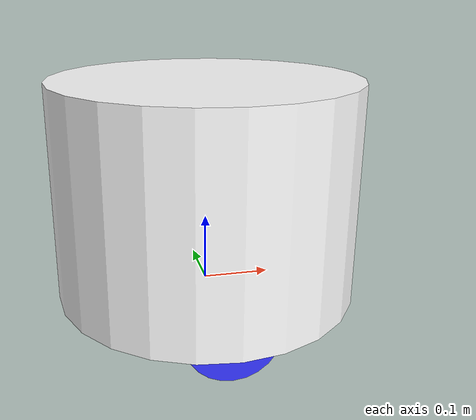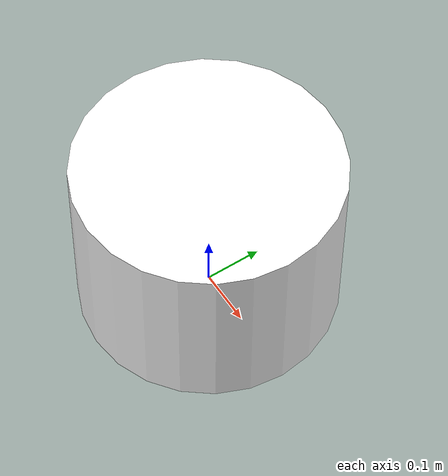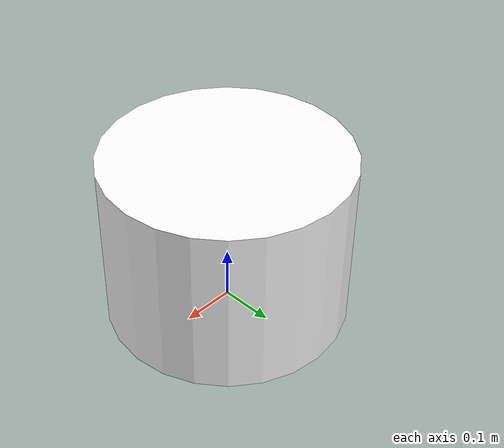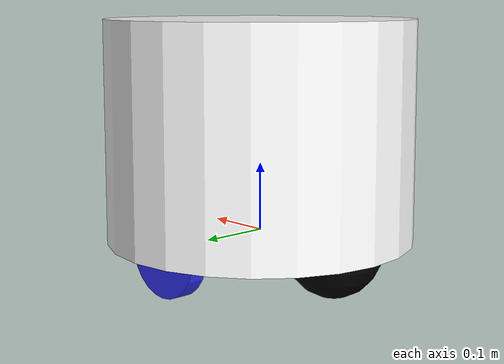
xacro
<?xml version="1.0"?>
<robot xmlns:xacro="http://www.ros.org/wiki/xacro">

<xacro:include filename="inertial_macros.xacro" />

<material name="white">
    <color rgba="1 1 1 1"/>
</material>

<material name="orange">
    <color rgba="1 0.3 0.1 1"/>
</material>

<material name="blue">
    <color rgba="0.2 0.2 1 1"/>
</material>

<material name="black">
    <color rgba="0 0 0 1"/>
</material>
<material name="red">
    <color rgba="1 0 0 1"/>
</material>

<link name="base_link">
</link>

<joint name="base_footprint_joint" type="fixed">
    <parent link="base_link"/>
    <child link="base_footprint"/>
    <origin xyz="0 0 0" rpy="0 0 0"/>
</joint>

<link name="base_footprint">
</link>

<joint name="chassis_joint" type="fixed">
    <parent link="base_link"/>
    <child link="chassis"/>
    <origin xyz="0 0 0"/>
</joint>

<link name="chassis">
    <visual>
        <origin xyz="0 0 0.15" rpy="0 0 0"/>
        <geometry>
            <cylinder length="0.322" radius="0.225"/>
        </geometry>
        <material name="white"/>
    </visual>
    <collision>
        <origin xyz="0 0 0.15" rpy="0 0 0"/>
        <geometry>
            <cylinder length="0.322" radius="0.225"/>
        </geometry>
    </collision>
    <xacro:inertial_cylinder mass="0.5" length="0.322" radius="0.225">
        <origin xyz="0 0 0.15" rpy="0 0 0"/>
    </xacro:inertial_cylinder>
</link>

<joint name="left_wheel_joint" type="continuous">
    <parent link="base_link"/>
    <child link="left_wheel"/>
    <origin xyz="0 0.169 0" rpy="-${pi/2} 0 0"/>
    <axis xyz="0 0 1"/>
</joint>

<link name="left_wheel">
    <visual>
        <geometry>
            <cylinder length="0.024" radius="0.068" />
        </geometry>
        <material name="blue"/>
    </visual>
    <collision>
        <geometry>
            <sphere radius="0.068" />
        </geometry>
        <material name="blue"/>
    </collision>
    <gazebo reference="left_wheel">
        <material>Gazebo/Black</material>
        <mu1 value="0.1"/>
        <mu2 value="0.1"/>
    </gazebo>
    <xacro:inertial_cylinder mass="0.1" length="0.024" radius="0.068">
        <origin xyz="0 0 0" rpy="0 0 0"/>
    </xacro:inertial_cylinder>
</link>

<joint name="right_wheel_joint" type="continuous">
    <parent link="base_link"/>
    <child link="right_wheel"/>
    <origin xyz="0 -0.169 0" rpy="${pi/2} 0 0"/>
    <axis xyz="0 0 -1"/>
</joint>

<link name="right_wheel">
    <visual>
        <geometry>
            <cylinder length="0.024" radius="0.068" />
        </geometry>
        <material name="blue"/>
    </visual>
    <collision>
        <geometry>
            <sphere radius="0.068" />
        </geometry>
        <material name="blue"/>
    </collision>
    <gazebo reference="right_wheel">
        <material>Gazebo/Black</material>
        <mu1 value="0.1"/>
        <mu2 value="0.1"/>
    </gazebo>
    <xacro:inertial_cylinder mass="0.1" length="0.024" radius="0.068">
        <origin xyz="0 0 0" rpy="0 0 0"/>
    </xacro:inertial_cylinder>
</link>

<joint name="caster_wheel_joint1" type="fixed">
    <parent link="base_link"/>
    <child link="caster_wheel1"/>
    <origin xyz="-0.15 0 0" rpy="0 0 0"/>
</joint>

<link name="caster_wheel1">
    <visual>
        <geometry>
            <sphere radius="0.068" />
        </geometry>
        <material name="black"/>
    </visual>
    <collision>
        <geometry>
            <sphere radius="0.068" />
        </geometry>
        <material name="black"/>
    </collision>
    <gazebo reference="caster_wheel1">
        <mu1 value="0.001"/>
        <mu2 value="0.001"/>
    </gazebo>
    <xacro:inertial_sphere mass="0.1" radius="0.068">
        <origin xyz="0 0 0" rpy="0 0 0"/>
    </xacro:inertial_sphere>
</link>

<joint name="caster_wheel_joint2" type="fixed">
    <parent link="base_link"/>
    <child link="caster_wheel2"/>
    <origin xyz="0.15 0 0" rpy="0 0 0"/>
</joint>

<link name="caster_wheel2">
    <visual>
        <geometry>
            <sphere radius="0.068" />
        </geometry>
        <material name="black"/>
    </visual>
    <collision>
        <geometry>
            <sphere radius="0.068" />
        </geometry>
        <material name="black"/>
    </collision>
    <gazebo reference="caster_wheel2">
        <mu1 value="0.001"/>
        <mu2 value="0.001"/>
    </gazebo>
    <xacro:inertial_sphere mass="0.1" radius="0.068">
        <origin xyz="0 0 0" rpy="0 0 0"/>
    </xacro:inertial_sphere>
</link>

</robot>
